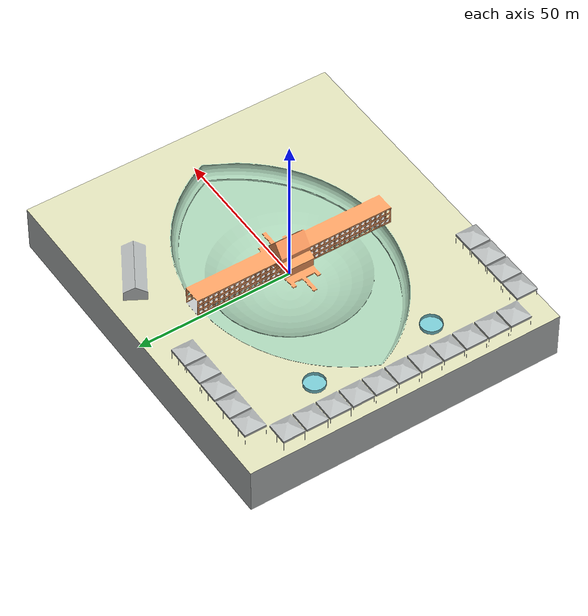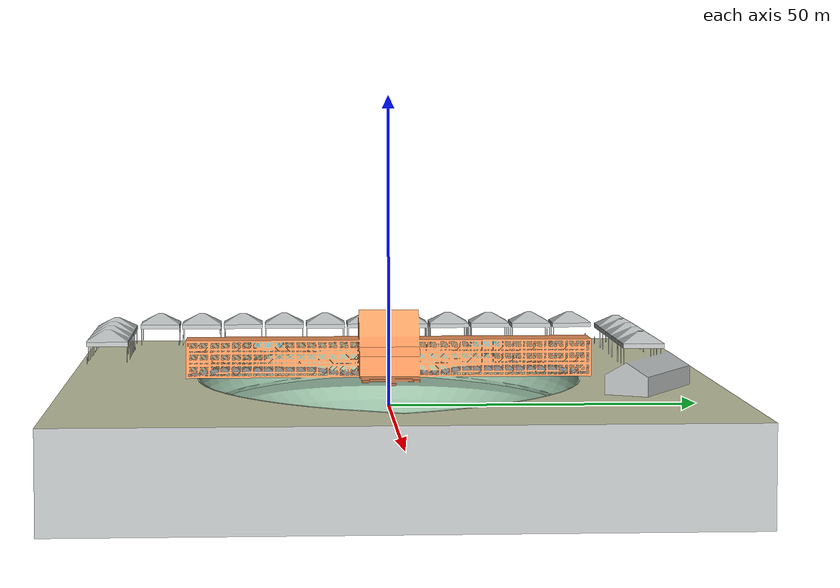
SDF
<?xml version="1.0" ?>
<sdf version="1.9">
    <model name="transdec">
        <static>true</static>
        <link name="link">
            <visual name="transdec_visual">
                <geometry>
                    <mesh>
                        <uri>transdec.dae</uri>
                    </mesh>
                </geometry>
            </visual>
            <collision name="transdec_collision">
                <geometry>
                    <mesh>
                        <uri>transdec.dae</uri>
                    </mesh>
                </geometry>
            </collision>
        </link>
    </model>
</sdf>
